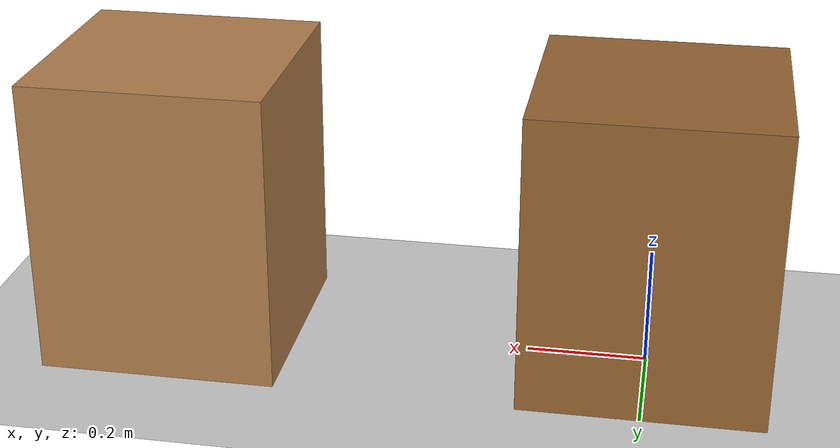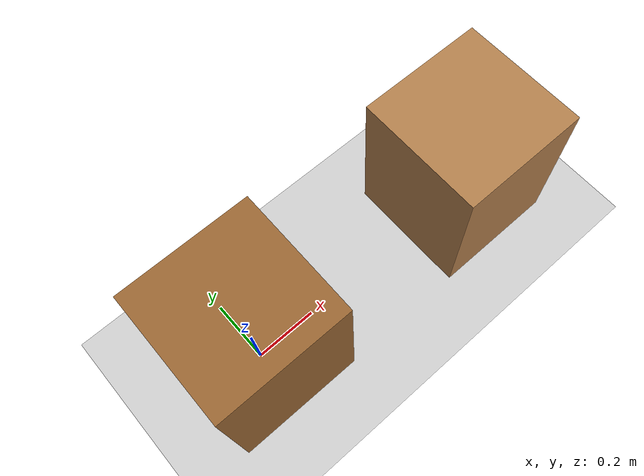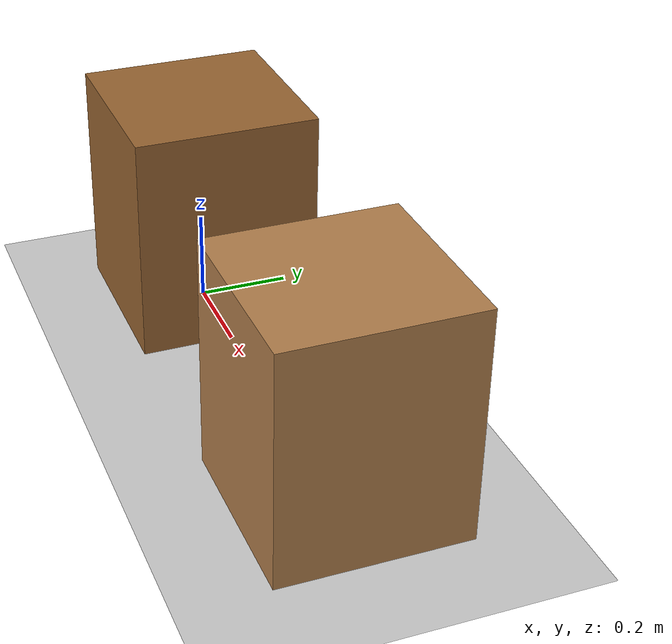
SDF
<?xml version="1.0" ?>
<sdf version="1.6">
  <world name="ur5_scene">
    <physics name="1ms" type="ignored">
      <max_step_size>0.001</max_step_size>
      <real_time_factor>1.0</real_time_factor>
    </physics>
    <plugin filename="gz-sim-physics-system" name="gz::sim::systems::Physics"/>
    <plugin filename="gz-sim-user-commands-system" name="gz::sim::systems::UserCommands"/>
    <plugin filename="gz-sim-scene-broadcaster-system" name="gz::sim::systems::SceneBroadcaster"/>
    <plugin filename="gz-sim-contact-system" name="gz::sim::systems::Contact"/>
    <plugin filename="gz-sim-sensors-system" name="gz::sim::systems::Sensors">
      <render_engine>ogre2</render_engine>
    </plugin>

    <light type="directional" name="sun">
      <cast_shadows>true</cast_shadows>
      <pose>0 0 10 0 0 0</pose>
      <diffuse>0.8 0.8 0.8 1</diffuse>
      <specular>0.2 0.2 0.2 1</specular>
      <attenuation>
        <range>1000</range>
        <constant>0.9</constant>
        <linear>0.01</linear>
        <quadratic>0.001</quadratic>
      </attenuation>
      <direction>-0.5 0.1 -0.9</direction>
    </light>

    <model name="ground_plane">
      <static>true</static>
      <link name="link">
        <collision name="collision">
          <geometry><plane><normal>0 0 1</normal><size>100 100</size></plane></geometry>
        </collision>
        <visual name="visual">
          <geometry><plane><normal>0 0 1</normal><size>100 100</size></plane></geometry>
          <material>
            <ambient>0.8 0.8 0.8 1</ambient>
            <diffuse>0.8 0.8 0.8 1</diffuse>
            <specular>0.8 0.8 0.8 1</specular>
          </material>
        </visual>
      </link>
    </model>

    <!-- Chair 1 (Robot support) -->
    <model name="chair_1">
      <static>true</static>
      <pose>0 0 0.25 0 0 0</pose>
      <link name="link">
        <collision name="collision">
          <geometry><box><size>0.4 0.4 0.5</size></box></geometry>
        </collision>
        <visual name="visual">
          <geometry><box><size>0.4 0.4 0.5</size></box></geometry>
          <material>
            <ambient>0.6 0.4 0.2 1</ambient>
            <diffuse>0.6 0.4 0.2 1</diffuse>
          </material>
        </visual>
      </link>
    </model>

    <!-- Chair 2 (Cube support) -->
    <model name="chair_2">
      <static>true</static>
      <pose>0.8 0 0.25 0 0 0</pose>
      <link name="link">
        <collision name="collision">
          <geometry><box><size>0.4 0.4 0.5</size></box></geometry>
        </collision>
        <visual name="visual">
          <geometry><box><size>0.4 0.4 0.5</size></box></geometry>
          <material>
            <ambient>0.7 0.5 0.3 1</ambient>
            <diffuse>0.7 0.5 0.3 1</diffuse>
          </material>
        </visual>
      </link>
    </model>
  </world>
</sdf>
